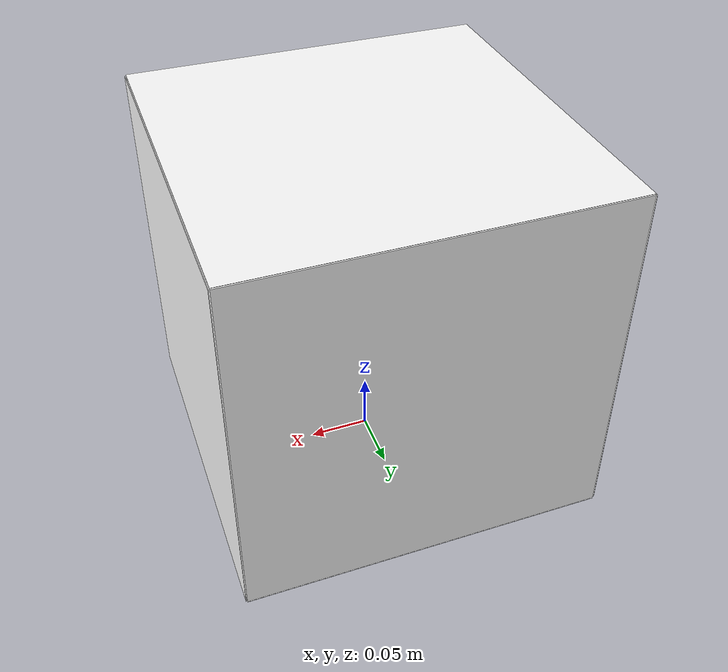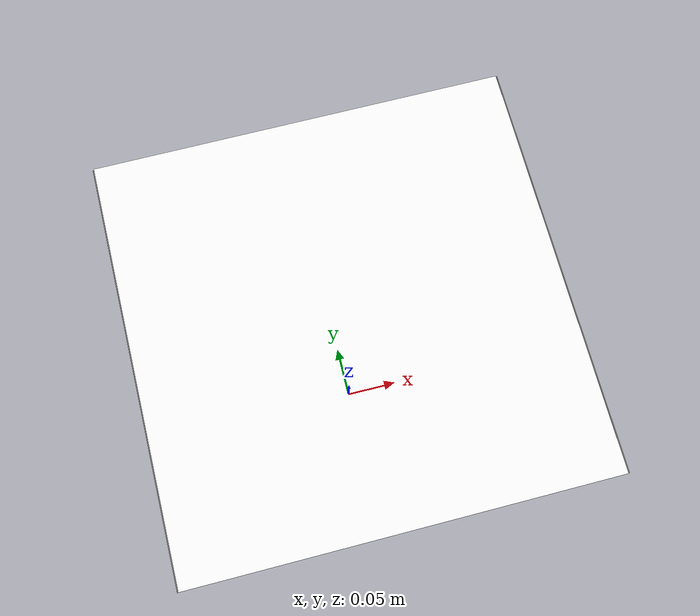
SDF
<?xml version="1.0" encoding="UTF-8"?>
<sdf version='1.9'>
  <model name='teddy_bear'>
    <static>true</static>
    <pose>0 0 0.15 0 0 0</pose>
    <link name='base'>
      <!-- Box nero come base -->
      <visual name='box_visual'>
        <geometry>
          <box>
            <size>0.3 0.3 0.3</size>
          </box>
        </geometry>
        <material>
          <ambient>1 1 1 1</ambient>
          <diffuse>1 1 1 1</diffuse>
          <specular>0.1 0.1 0.1 1</specular>
        </material>
      </visual>

      <!-- Piano con texture ArUco sulla faccia superiore -->
      <visual name='texture_neg_y'>
        <pose>0 0 0.151 0 0 0</pose>
        <geometry>
          <plane>
            <normal>0 0 1</normal>
            <size>0.3 0.3</size>
          </plane>
        </geometry>
        <material>
          <diffuse>1 1 1 1</diffuse>
          <specular>0.4 0.4 0.4 1</specular>
          <pbr>
            <metal>
              <albedo_map>model://leo_race_field/teddy_bear/teddy_bear.png</albedo_map>
            </metal>
          </pbr>
        </material>
      </visual>

      <visual name='texture_pos_y'>
        <pose>0 0 -0.151 3.14159 0 3.14159</pose>
        <geometry>
          <plane>
            <normal>0 0 1</normal>
            <size>0.3 0.3</size>
          </plane>
        </geometry>
        <material>
          <diffuse>1 1 1 1</diffuse>
          <specular>0.4 0.4 0.4 1</specular>
          <pbr>
            <metal>
              <albedo_map>model://leo_race_field/teddy_bear/teddy_bear.png</albedo_map>
            </metal>
          </pbr>
        </material>
      </visual>

      <visual name='texture_pos_x'>
        <pose>0.151 0 0 0 1.5708 0</pose>
        <geometry>
          <plane>
            <normal>0 0 1</normal>
            <size>0.3 0.3</size>
          </plane>
        </geometry>
        <material>
          <diffuse>1 1 1 1</diffuse>
          <specular>0.4 0.4 0.4 1</specular>
          <pbr>
            <metal>
              <albedo_map>model://leo_race_field/teddy_bear/teddy_bear.png</albedo_map>
            </metal>
          </pbr>
        </material>
      </visual>

      <visual name='texture_neg_x'>
        <pose>-0.151 0 0 0 -1.5708 0</pose>
        <geometry>
          <plane>
            <normal>0 0 1</normal>
            <size>0.3 0.3</size>
          </plane>
        </geometry>
        <material>
          <diffuse>1 1 1 1</diffuse>
          <specular>0.4 0.4 0.4 1</specular>
          <pbr>
            <metal>
              <albedo_map>model://leo_race_field/teddy_bear/teddy_bear.png</albedo_map>
            </metal>
          </pbr>
        </material>
      </visual>

      <!-- Collision geometry -->
      <collision name='box_collision'>
        <geometry>
          <box>
            <size>0.3 0.3 0.3</size>
          </box>
        </geometry>
      </collision>
    </link>
  </model>
</sdf>
